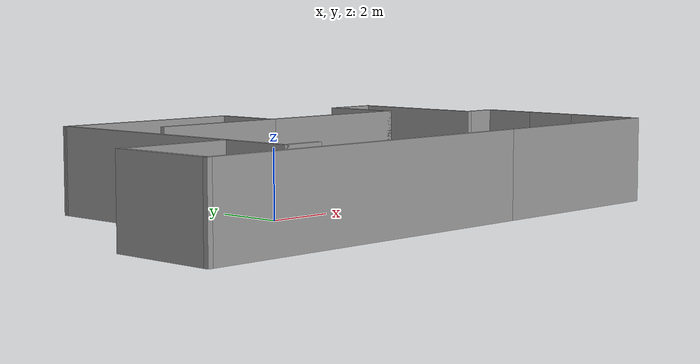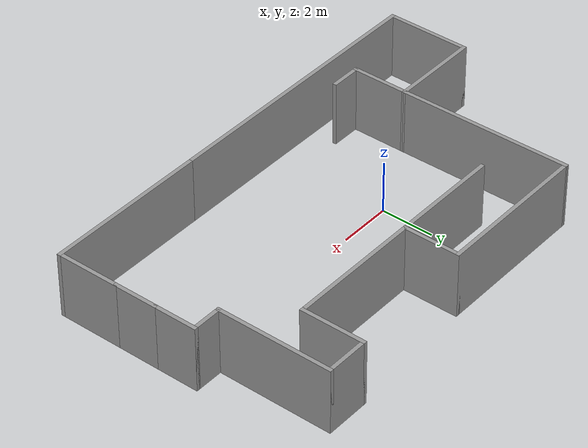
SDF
<?xml version='1.0'?>
<sdf version='1.7'>
  <model name='wall_only'>
    <pose>2.045 0.33 0 0 -0 0</pose>
    <link name='Wall_10'>
      <collision name='Wall_10_Collision'>
        <geometry>
          <box>
            <size>1.75 0.15 2.5</size>
          </box>
        </geometry>
        <pose>0 0 1.25 0 -0 0</pose>
      </collision>
      <visual name='Wall_10_Visual'>
        <pose>0 0 1.25 0 -0 0</pose>
        <geometry>
          <box>
            <size>1.75 0.15 2.5</size>
          </box>
        </geometry>
        <material>
          <script>
            <uri>file://media/materials/scripts/gazebo.material</uri>
            <name>Gazebo/Grey</name>
          </script>
          <ambient>1 1 1 1</ambient>
        </material>
        <meta>
          <layer>0</layer>
        </meta>
      </visual>
      <pose>8.475 -1.8 0 0 -0 -1.5708</pose>
    </link>
    <link name='Wall_11'>
      <collision name='Wall_11_Collision'>
        <geometry>
          <box>
            <size>2.5 0.15 2.5</size>
          </box>
        </geometry>
        <pose>0 0 1.25 0 -0 0</pose>
      </collision>
      <visual name='Wall_11_Visual'>
        <pose>0 0 1.25 0 -0 0</pose>
        <geometry>
          <box>
            <size>2.5 0.15 2.5</size>
          </box>
        </geometry>
        <material>
          <script>
            <uri>file://media/materials/scripts/gazebo.material</uri>
            <name>Gazebo/Grey</name>
          </script>
          <ambient>1 1 1 1</ambient>
        </material>
        <meta>
          <layer>0</layer>
        </meta>
      </visual>
      <pose>8.475 -3.775 0 0 -0 -1.5708</pose>
    </link>
    <link name='Wall_12'>
      <collision name='Wall_12_Collision'>
        <geometry>
          <box>
            <size>6.25 0.15 2.5</size>
          </box>
        </geometry>
        <pose>0 0 1.25 0 -0 0</pose>
      </collision>
      <visual name='Wall_12_Visual'>
        <pose>0 0 1.25 0 -0 0</pose>
        <geometry>
          <box>
            <size>6.25 0.15 2.5</size>
          </box>
        </geometry>
        <material>
          <script>
            <uri>file://media/materials/scripts/gazebo.material</uri>
            <name>Gazebo/Grey</name>
          </script>
          <ambient>1 1 1 1</ambient>
        </material>
        <meta>
          <layer>0</layer>
        </meta>
      </visual>
      <pose>5.425 -4.95 0 0 -0 3.14159</pose>
    </link>
    <link name='Wall_13'>
      <collision name='Wall_13_Collision'>
        <geometry>
          <box>
            <size>11 0.15 2.5</size>
          </box>
        </geometry>
        <pose>0 0 1.25 0 -0 0</pose>
      </collision>
      <visual name='Wall_13_Visual'>
        <pose>0 0 1.25 0 -0 0</pose>
        <geometry>
          <box>
            <size>11 0.15 2.5</size>
          </box>
        </geometry>
        <material>
          <script>
            <uri>file://media/materials/scripts/gazebo.material</uri>
            <name>Gazebo/Grey</name>
          </script>
          <ambient>1 1 1 1</ambient>
        </material>
        <meta>
          <layer>0</layer>
        </meta>
      </visual>
      <pose>-3.05 -4.95 0 0 -0 3.14159</pose>
    </link>
    <link name='Wall_14'>
      <collision name='Wall_14_Collision'>
        <geometry>
          <box>
            <size>3.25 0.15 2.5</size>
          </box>
        </geometry>
        <pose>0 0 1.25 0 -0 0</pose>
      </collision>
      <visual name='Wall_14_Visual'>
        <pose>0 0 1.25 0 -0 0</pose>
        <geometry>
          <box>
            <size>3.25 0.15 2.5</size>
          </box>
        </geometry>
        <material>
          <script>
            <uri>file://media/materials/scripts/gazebo.material</uri>
            <name>Gazebo/Grey</name>
          </script>
          <ambient>1 1 1 1</ambient>
        </material>
        <meta>
          <layer>0</layer>
        </meta>
      </visual>
      <pose>-8.475 -3.4 0 0 -0 1.5708</pose>
    </link>
    <link name='Wall_2'>
      <collision name='Wall_2_Collision'>
        <geometry>
          <box>
            <size>6 0.15 2.5</size>
          </box>
        </geometry>
        <pose>0 0 1.25 0 -0 0</pose>
      </collision>
      <visual name='Wall_2_Visual'>
        <pose>0 0 1.25 0 -0 0</pose>
        <geometry>
          <box>
            <size>6 0.15 2.5</size>
          </box>
        </geometry>
        <material>
          <script>
            <uri>file://media/materials/scripts/gazebo.material</uri>
            <name>Gazebo/Grey</name>
          </script>
          <ambient>1 1 1 1</ambient>
        </material>
        <meta>
          <layer>0</layer>
        </meta>
      </visual>
      <pose>-2.25 4.7 0 0 -0 0</pose>
    </link>
    <link name='Wall_20'>
      <collision name='Wall_20_Collision'>
        <geometry>
          <box>
            <size>3.5 0.15 2.5</size>
          </box>
        </geometry>
        <pose>0 0 1.25 0 -0 0</pose>
      </collision>
      <visual name='Wall_20_Visual'>
        <pose>0 0 1.25 0 -0 0</pose>
        <geometry>
          <box>
            <size>3.5 0.15 2.5</size>
          </box>
        </geometry>
        <material>
          <script>
            <uri>file://media/materials/scripts/gazebo.material</uri>
            <name>Gazebo/Grey</name>
          </script>
          <ambient>1 1 1 1</ambient>
        </material>
        <meta>
          <layer>0</layer>
        </meta>
      </visual>
      <pose>-6.8 -1.85 0 0 -0 0</pose>
    </link>
    <link name='Wall_25'>
      <collision name='Wall_25_Collision'>
        <geometry>
          <box>
            <size>6.70019 0.15 2.5</size>
          </box>
        </geometry>
        <pose>0 0 1.25 0 -0 0</pose>
      </collision>
      <visual name='Wall_25_Visual'>
        <pose>0 0 1.25 0 -0 0</pose>
        <geometry>
          <box>
            <size>6.70019 0.15 2.5</size>
          </box>
        </geometry>
        <material>
          <script>
            <uri>file://media/materials/scripts/gazebo.material</uri>
            <name>Gazebo/Grey</name>
          </script>
          <ambient>1 1 1 1</ambient>
        </material>
        <meta>
          <layer>0</layer>
        </meta>
      </visual>
      <pose>-5.15 1.425 0 0 -0 1.57843</pose>
    </link>
    <link name='Wall_27'>
      <collision name='Wall_27_Collision'>
        <geometry>
          <box>
            <size>2.25 0.15 2.5</size>
          </box>
        </geometry>
        <pose>0 0 1.25 0 -0 0</pose>
      </collision>
      <visual name='Wall_27_Visual'>
        <pose>0 0 1.25 0 -0 0</pose>
        <geometry>
          <box>
            <size>2.25 0.15 2.5</size>
          </box>
        </geometry>
        <material>
          <script>
            <uri>file://media/materials/scripts/gazebo.material</uri>
            <name>Gazebo/Grey</name>
          </script>
          <ambient>1 1 1 1</ambient>
        </material>
        <meta>
          <layer>0</layer>
        </meta>
      </visual>
      <pose>-5.125 -2.9 0 0 -0 -1.5708</pose>
    </link>
    <link name='Wall_28'>
      <collision name='Wall_28_Collision'>
        <geometry>
          <box>
            <size>1.25 0.15 2.5</size>
          </box>
        </geometry>
        <pose>0 0 1.25 0 -0 0</pose>
      </collision>
      <visual name='Wall_28_Visual'>
        <pose>0 0 1.25 0 -0 0</pose>
        <geometry>
          <box>
            <size>1.25 0.15 2.5</size>
          </box>
        </geometry>
        <material>
          <script>
            <uri>file://media/materials/scripts/gazebo.material</uri>
            <name>Gazebo/Grey</name>
          </script>
          <ambient>1 1 1 1</ambient>
        </material>
        <meta>
          <layer>0</layer>
        </meta>
      </visual>
      <pose>-4.575 -3.95 0 0 -0 0</pose>
    </link>
    <link name='Wall_3'>
      <collision name='Wall_3_Collision'>
        <geometry>
          <box>
            <size>2.25 0.15 2.5</size>
          </box>
        </geometry>
        <pose>0 0 1.25 0 -0 0</pose>
      </collision>
      <visual name='Wall_3_Visual'>
        <pose>0 0 1.25 0 -0 0</pose>
        <geometry>
          <box>
            <size>2.25 0.15 2.5</size>
          </box>
        </geometry>
        <material>
          <script>
            <uri>file://media/materials/scripts/gazebo.material</uri>
            <name>Gazebo/Grey</name>
          </script>
          <ambient>1 1 1 1</ambient>
        </material>
        <meta>
          <layer>0</layer>
        </meta>
      </visual>
      <pose>0.675 3.65 0 0 -0 -1.5708</pose>
    </link>
    <link name='Wall_30'>
      <collision name='Wall_30_Collision'>
        <geometry>
          <box>
            <size>4.25 0.15 2.5</size>
          </box>
        </geometry>
        <pose>0 0 1.25 0 -0 0</pose>
      </collision>
      <visual name='Wall_30_Visual'>
        <pose>0 0 1.25 0 -0 0</pose>
        <geometry>
          <box>
            <size>4.25 0.15 2.5</size>
          </box>
        </geometry>
        <material>
          <script>
            <uri>file://media/materials/scripts/gazebo.material</uri>
            <name>Gazebo/Grey</name>
          </script>
          <ambient>1 1 1 1</ambient>
        </material>
        <meta>
          <layer>0</layer>
        </meta>
      </visual>
      <pose>-1.375 2.6 0 0 -0 3.14159</pose>
    </link>
    <link name='Wall_4'>
      <collision name='Wall_4_Collision'>
        <geometry>
          <box>
            <size>5.25 0.15 2.5</size>
          </box>
        </geometry>
        <pose>0 0 1.25 0 -0 0</pose>
      </collision>
      <visual name='Wall_4_Visual'>
        <pose>0 0 1.25 0 -0 0</pose>
        <geometry>
          <box>
            <size>5.25 0.15 2.5</size>
          </box>
        </geometry>
        <material>
          <script>
            <uri>file://media/materials/scripts/gazebo.material</uri>
            <name>Gazebo/Grey</name>
          </script>
          <ambient>1 1 1 1</ambient>
        </material>
        <meta>
          <layer>0</layer>
        </meta>
      </visual>
      <pose>3.225 2.6 0 0 -0 0</pose>
    </link>
    <link name='Wall_5'>
      <collision name='Wall_5_Collision'>
        <geometry>
          <box>
            <size>2.5 0.15 2.5</size>
          </box>
        </geometry>
        <pose>0 0 1.25 0 -0 0</pose>
      </collision>
      <visual name='Wall_5_Visual'>
        <pose>0 0 1.25 0 -0 0</pose>
        <geometry>
          <box>
            <size>2.5 0.15 2.5</size>
          </box>
        </geometry>
        <material>
          <script>
            <uri>file://media/materials/scripts/gazebo.material</uri>
            <name>Gazebo/Grey</name>
          </script>
          <ambient>1 1 1 1</ambient>
        </material>
        <meta>
          <layer>0</layer>
        </meta>
      </visual>
      <pose>5.775 3.775 0 0 -0 1.5708</pose>
    </link>
    <link name='Wall_6'>
      <collision name='Wall_6_Collision'>
        <geometry>
          <box>
            <size>1.75 0.15 2.5</size>
          </box>
        </geometry>
        <pose>0 0 1.25 0 -0 0</pose>
      </collision>
      <visual name='Wall_6_Visual'>
        <pose>0 0 1.25 0 -0 0</pose>
        <geometry>
          <box>
            <size>1.75 0.15 2.5</size>
          </box>
        </geometry>
        <material>
          <script>
            <uri>file://media/materials/scripts/gazebo.material</uri>
            <name>Gazebo/Grey</name>
          </script>
          <ambient>1 1 1 1</ambient>
        </material>
        <meta>
          <layer>0</layer>
        </meta>
      </visual>
      <pose>6.575 4.95 0 0 -0 0</pose>
    </link>
    <link name='Wall_7'>
      <collision name='Wall_7_Collision'>
        <geometry>
          <box>
            <size>4.5 0.15 2.5</size>
          </box>
        </geometry>
        <pose>0 0 1.25 0 -0 0</pose>
      </collision>
      <visual name='Wall_7_Visual'>
        <pose>0 0 1.25 0 -0 0</pose>
        <geometry>
          <box>
            <size>4.5 0.15 2.5</size>
          </box>
        </geometry>
        <material>
          <script>
            <uri>file://media/materials/scripts/gazebo.material</uri>
            <name>Gazebo/Grey</name>
          </script>
          <ambient>1 1 1 1</ambient>
        </material>
        <meta>
          <layer>0</layer>
        </meta>
      </visual>
      <pose>7.375 2.775 0 0 -0 -1.5708</pose>
    </link>
    <link name='Wall_8'>
      <collision name='Wall_8_Collision'>
        <geometry>
          <box>
            <size>1.25 0.15 2.5</size>
          </box>
        </geometry>
        <pose>0 0 1.25 0 -0 0</pose>
      </collision>
      <visual name='Wall_8_Visual'>
        <pose>0 0 1.25 0 -0 0</pose>
        <geometry>
          <box>
            <size>1.25 0.15 2.5</size>
          </box>
        </geometry>
        <material>
          <script>
            <uri>file://media/materials/scripts/gazebo.material</uri>
            <name>Gazebo/Grey</name>
          </script>
          <ambient>1 1 1 1</ambient>
        </material>
        <meta>
          <layer>0</layer>
        </meta>
      </visual>
      <pose>7.925 0.6 0 0 -0 0</pose>
    </link>
    <link name='Wall_9'>
      <collision name='Wall_9_Collision'>
        <geometry>
          <box>
            <size>1.75 0.15 2.5</size>
          </box>
        </geometry>
        <pose>0 0 1.25 0 -0 0</pose>
      </collision>
      <visual name='Wall_9_Visual'>
        <pose>0 0 1.25 0 -0 0</pose>
        <geometry>
          <box>
            <size>1.75 0.15 2.5</size>
          </box>
        </geometry>
        <material>
          <script>
            <uri>file://media/materials/scripts/gazebo.material</uri>
            <name>Gazebo/Grey</name>
          </script>
          <ambient>1 1 1 1</ambient>
        </material>
        <meta>
          <layer>0</layer>
        </meta>
      </visual>
      <pose>8.475 -0.2 0 0 -0 -1.5708</pose>
    </link>
    <static>1</static>
  </model>
</sdf>
